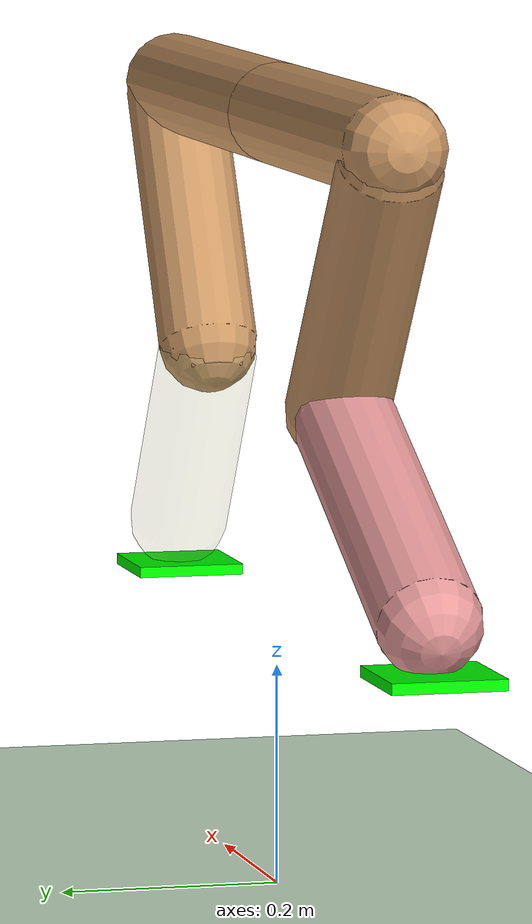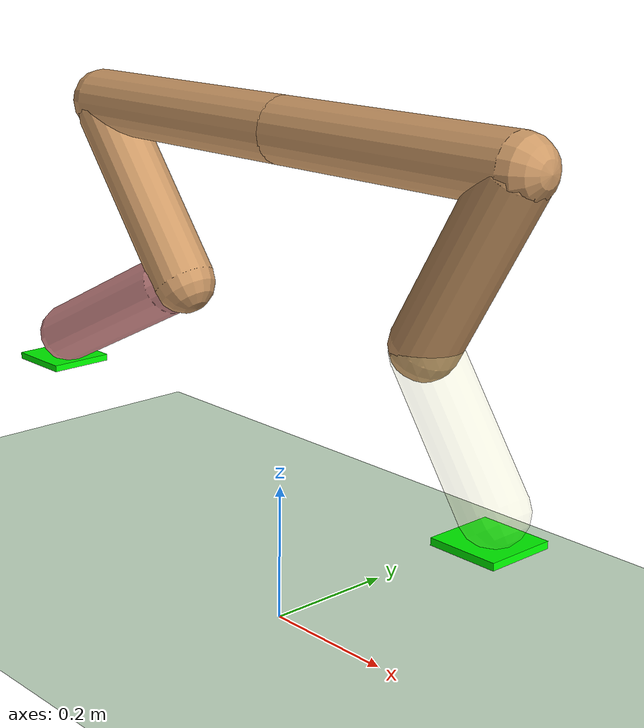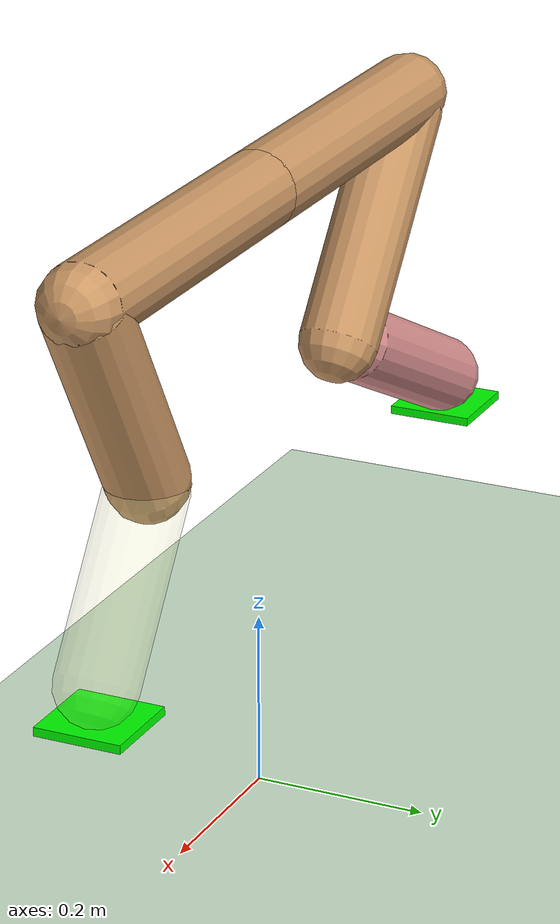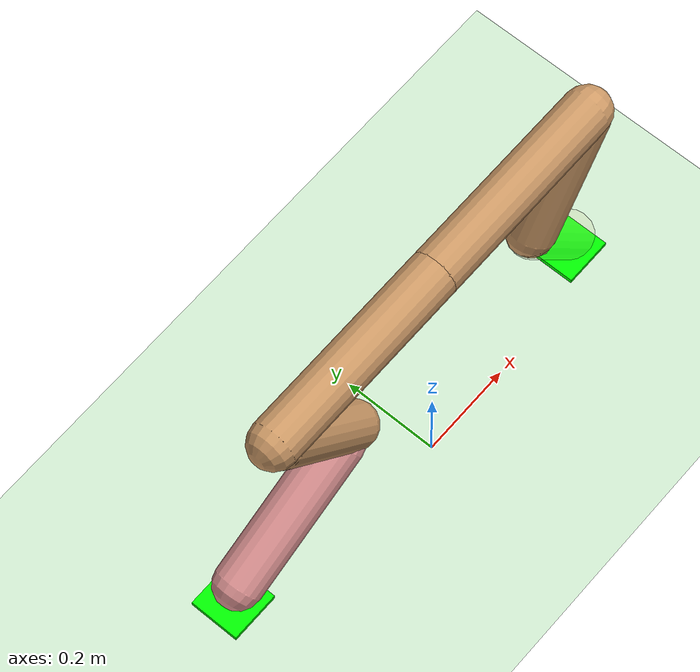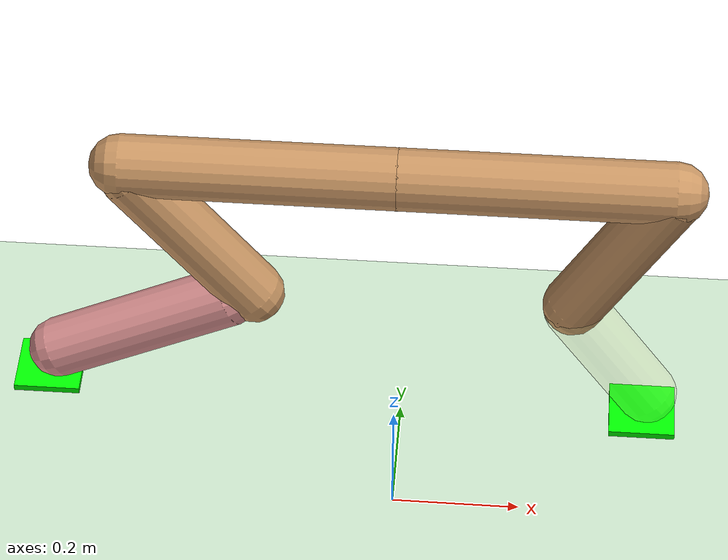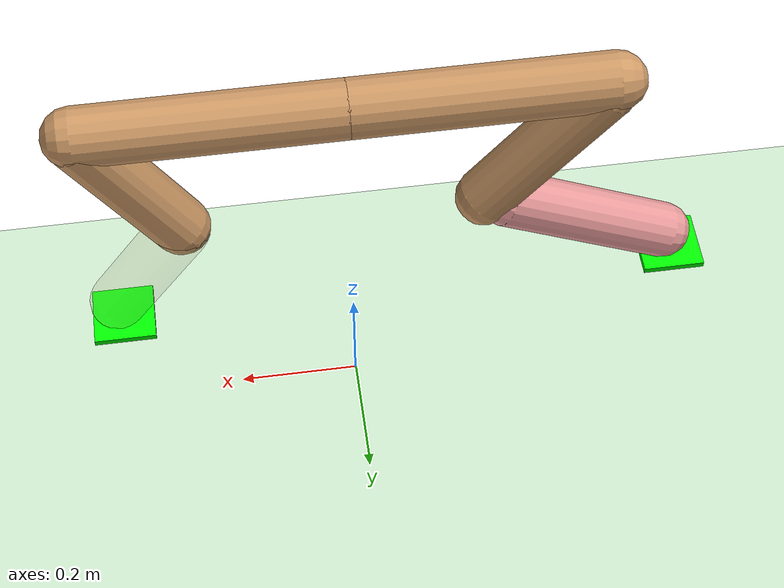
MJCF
<mujoco model="cheetah">
  <compiler angle="radian" coordinate="local" inertiafromgeom="true" settotalmass="20"/>

  <default>
    <joint armature=".1" damping=".01" limited="true" solimplimit="0 .8 .03" solreflimit=".02 1" stiffness="8"/>
    <geom conaffinity="0" condim="3" contype="1" friction=".4 .1 .1" rgba="0.8 0.6 .4 1" solimp="0.0 0.8 0.01" solref="0.02 1"/>
  </default>
  <size nstack="300000" nuser_geom="1"/>
  <option gravity="0 0 -9.81" timestep="0.01"/>

  <asset>
    <texture builtin="gradient" height="100" rgb1="1 1 1" rgb2="0 0 0" type="skybox" width="100"/>
    <texture builtin="flat" height="1278" mark="cross" markrgb="1 1 1" name="texgeom" random="0.01" rgb1="0.8 0.6 0.4" rgb2="0.8 0.6 0.4" type="cube" width="127"/>
    <texture builtin="checker" height="100" name="texplane" rgb1="0 0 0" rgb2="0.8 0.8 0.8" type="2d" width="100"/>
    <material name="MatPlane" reflectance="0.5" shininess="1" specular="1" texrepeat="60 60" texture="texplane"/>
    <material name="geom" texture="texgeom" texuniform="true"/>
  </asset>
  <worldbody>
    <light cutoff="100" diffuse="1 1 1" dir="-0 0 -1.3" directional="true" exponent="1" pos="0 0 1.3" specular=".1 .1 .1"/>
    <geom conaffinity="1" condim="6" material="MatPlane" name="floor" pos="0 0 0" rgba="0.8 0.9 0.8 1" size="40 40 40" type="plane"/>
    <body name="torso" pos="0 0 .7">
      <camera name="track" mode="trackcom" pos="0 -3 0.3" xyaxes="1 0 0 0 0 1"/>
      <joint armature="0" axis="1 0 0" damping="0" limited="false" name="rootx" pos="0 0 0" stiffness="0" type="slide"/>
      <joint armature="0" axis="0 0 1" damping="0" limited="false" name="rootz" pos="0 0 0" stiffness="0" type="slide"/>
      <joint armature="0" axis="0 1 0" damping="0" limited="false" name="rooty" pos="0 0 0" stiffness="0" type="hinge"/>
      <geom fromto="-.4 0 0 0 0 0" name="torso1" size="0.046" type="capsule"/>

      <body name="bthigh" pos="-.4 0 0">
        <joint axis="0 1 0" damping="6" name="bthigh" pos="0 0 0" range="-.52 1.05" stiffness="180" type="hinge"/>
        <geom axisangle="0 1 0 -3.8" name="bthigh_geom" pos=".1 0 -.13" size="0.046 .145" type="capsule"/>
        <body name="bshin" pos=".16 0 -.25">
          <joint axis="0 1 0" damping="4.5" name="bshin" pos="0 0 0" range="-.785 .785" stiffness="120" type="hinge"/>
          <geom axisangle="0 1 0 -2.03" name="bshin_geom" pos="-.14 0 -.07" rgba="0.9 0.6 0.6 1" size="0.046 .15" type="capsule"/>
          <site name="back_contact" type="box" size="0.05 0.05" rgba="0 1 0 1" pos="-.29 0 -.18"/>
          <body name="bfoot" pos="-.28 0 -.14">
          </body>
        </body>
      </body>

      <body name="midtorso" pos="0 0 0">
        <joint axis="0 1 0" name="midtorso_joint" pos="0 0 0" range="-0.5 0.5" type="hinge" stiffness="100"/>
        <geom fromto="0 0 0 .4 0 0" name="torso2" size="0.046" type="capsule"/>

        <body name="fthigh" pos=".4 0 0">
          <joint axis="0 1 0" damping="4.5" name="fthigh" pos="0 0 0" range="-1 .7" stiffness="180" type="hinge"/>
          <geom axisangle="0 1 0 .52" name="fthigh_geom" pos="-.07 0 -.12" size="0.046 .133" type="capsule"/>
          <body name="fshin" pos="-.14 0 -.24">
            <joint axis="0 1 0" damping="3" name="fshin" pos="0 0 0" range="-1.2 .87" stiffness="120" type="hinge"/>
            <geom axisangle="0 1 0 -.6" name="fshin_geom" pos=".065 0 -.09" rgba="0.9 0.9 0.6 0.2" size="0.046 .106" type="capsule"/>
            <site name="front_contact" type="box" size="0.05 0.05" rgba="0 1 0 1" pos=".12 0 -.22"/>
            <body name="ffoot" pos=".13 0 -.18">
            </body>
          </body>
        </body>
      </body>
    </body>
  </worldbody>
  <actuator>
    <motor gear="120" joint="bthigh" name="bthigh"/>
    <motor gear="90" joint="bshin" name="bshin"/>
    <motor gear="120" joint="fthigh" name="fthigh"/>
    <motor gear="60" joint="fshin" name="fshin"/>
  </actuator>
  <sensor>
    <touch site="front_contact"/>
    <touch site="back_contact"/>
  </sensor>
</mujoco>
